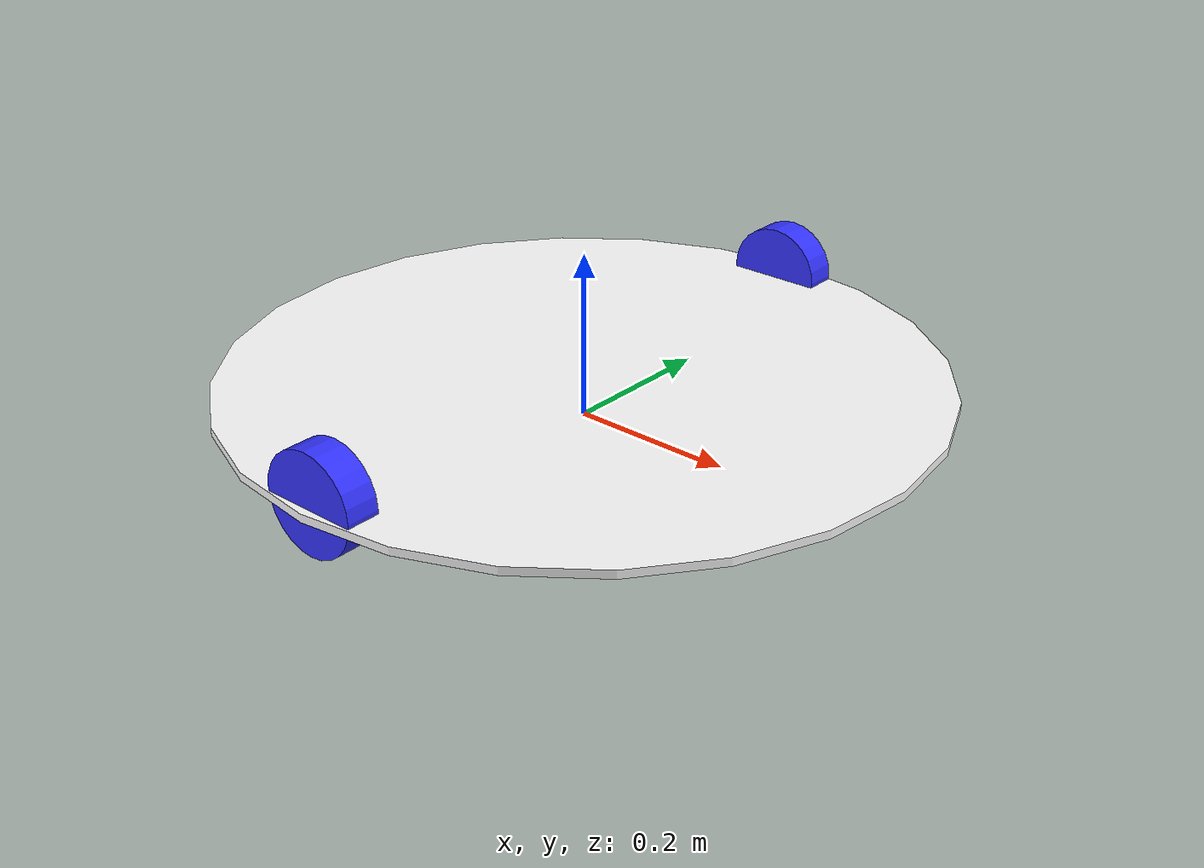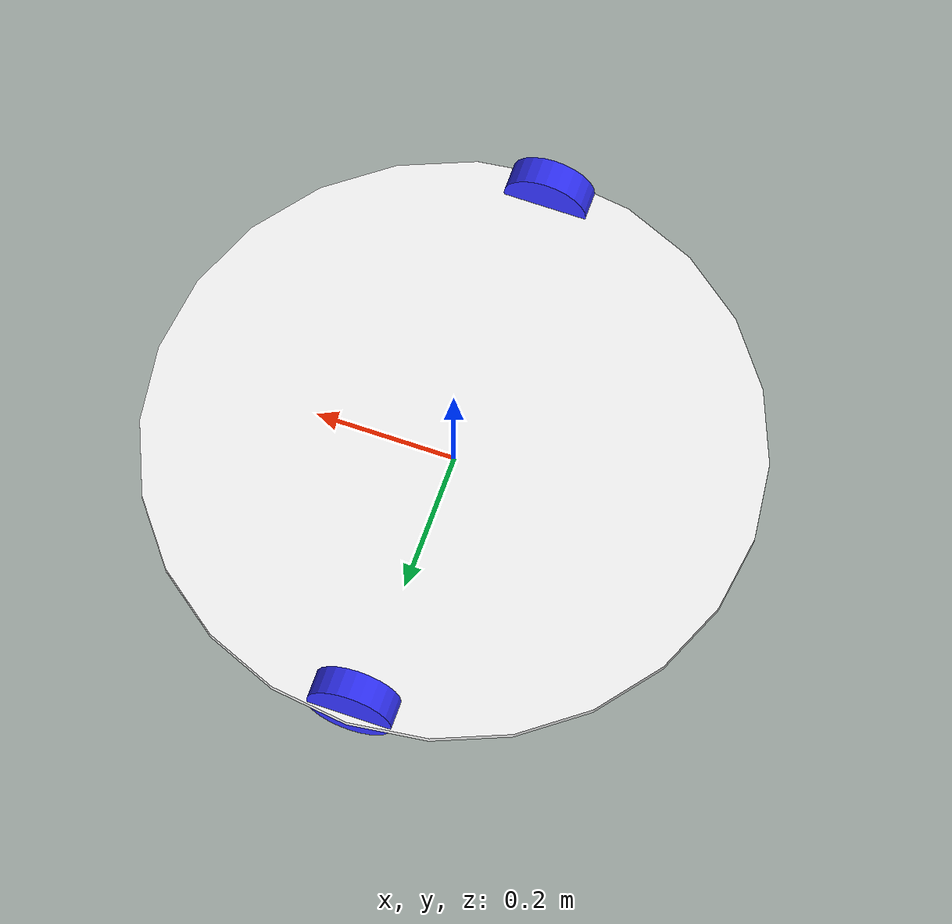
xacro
<?xml version="1.0"?>
<robot xmlns:xacro="http://www.ros.org/wiki/xacro" >

    <xacro:include filename="inertial_macros.xacro"/>

    <material name="white">
        <color rgba="1 1 1 1" />
    </material>

    <material name="orange">
        <color rgba="1 0.3 0.1 1"/>
    </material>

    <material name="blue">
        <color rgba="0.2 0.2 1 1"/>
    </material>

    <material name="black">
        <color rgba="0 0 0 1"/>
    </material>

    <material name="red">
        <color rgba="1 0 0 1"/>
    </material>

    <!-- BASE LINK -->

    <link name="base_link">

    </link>

    <!-- BASE_FOOTPRINT LINK -->
    <joint name="base_footprint_joint" type="fixed">
        <parent link="base_link"/>
        <child link="base_footprint"/>
        <origin xyz="0 0 0" rpy="0 0 0"/>
    </joint>

    <link name="base_footprint">
    </link>

    <!-- CHASSIS LINK -->

    <joint name="chassis_joint" type="fixed">
        <parent link="base_link"/>
        <child link="chassis"/>
        <origin xyz="0 0 0.05"/>
    </joint>

    <link name="chassis">
        <visual>
            <origin xyz="0 0 0"/>
            <geometry>
                <cylinder radius="0.43" length="0.01"/>
            </geometry>
            <material name="white"/>
        </visual>
        <collision>
            <origin xyz="0 0 0.05"/>
            <geometry>
                <cylinder radius="0.43" length="0.01"/>
            </geometry>
        </collision>
        <xacro:inertial_cylinder mass="1" length="0.01" radius="0.43">
            <origin xyz="0 0 0" rpy="0 0 0"/>
        </xacro:inertial_cylinder>
    </link>

    <gazebo reference="chassis">
        <material>Gazebo/White</material>
    </gazebo>

    <!-- LEFT WHEEL LINK -->

    <joint name="left_wheel_joint" type="continuous">
        <parent link="base_link"/>
        <child link="left_wheel"/>
        <origin xyz="0 0.4 0.06" rpy="-${pi/2} 0 0" />
        <axis xyz="0 0 1"/>
    </joint>

    <link name="left_wheel">
        <visual>
            <geometry>
                <cylinder radius="0.06" length="0.04"/>
            </geometry>
            <material name="blue"/>
        </visual>
        <collision>
            <geometry>
                <sphere radius="0.06" />
            </geometry>
        </collision>
        <xacro:inertial_cylinder mass="0.2" length="0.04" radius="0.06">
            <origin xyz="0 0 0" rpy="0 0 0"/>
        </xacro:inertial_cylinder>
    </link>

    <gazebo reference="left_wheel">
        <material>Gazebo/Blue</material>
    </gazebo>

    <!-- RIGHT WHEEL LINK -->

    <joint name="right_wheel_joint" type="continuous">
        <parent link="base_link"/>
        <child link="right_wheel"/>
        <origin xyz="0 -0.4 0.06" rpy="${pi/2} 0 0" />
        <axis xyz="0 0 -1"/>
    </joint>

    <link name="right_wheel">
        <visual>
            <geometry>
                <cylinder radius="0.06" length="0.04"/>
            </geometry>
            <material name="blue"/>
        </visual>
        <collision>
            <geometry>
                <sphere radius="0.06"/>
            </geometry>
        </collision>
        <xacro:inertial_cylinder mass="0.2" length="0.04" radius="0.06">
            <origin xyz="0 0 0" rpy="0 0 0"/>
        </xacro:inertial_cylinder>
    </link>

    <gazebo reference="right_wheel">
        <material>Gazebo/Blue</material>
    </gazebo>

    <!-- CASTER WHEEL FRONT LINK -->

    <joint name="caster_wheel_joint_F" type="fixed">
        <parent link="chassis"/>
        <child link="caster_wheel_F"/>
        <origin xyz="0.35 0 -0.025"/>
    </joint>

    <link name="caster_wheel_F">
        <visual>
            <geometry>
                <sphere radius="0.025"/>
            </geometry>
            <material name="black"/>
        </visual>
        <collision>
            <geometry>
                <sphere radius="0.025"/>
            </geometry>
        </collision>
        <xacro:inertial_sphere mass="0.1" radius="0.025">
            <origin xyz="0 0 0" rpy="0 0 0"/>
        </xacro:inertial_sphere>
    </link>

    <gazebo reference="caster_wheel_F">
        <material>Gazebo/Black</material>
        <mu1 value="0.001"/>
        <mu2 value="0.001"/>
    </gazebo>

        <!-- CASTER WHEEL REAR LINK -->

    <joint name="caster_wheel_joint_R" type="fixed">
        <parent link="chassis"/>
        <child link="caster_wheel_R"/>
        <origin xyz="-0.35 0 -0.025"/>
    </joint>

    <link name="caster_wheel_R">
        <visual>
            <geometry>
                <sphere radius="0.025"/>
            </geometry>
            <material name="black"/>
        </visual>
        <collision>
            <geometry>
                <sphere radius="0.025"/>
            </geometry>
        </collision>
        <xacro:inertial_sphere mass="0.1" radius="0.025">
            <origin xyz="0 0 0" rpy="0 0 0"/>
        </xacro:inertial_sphere>
    </link>

    <gazebo reference="caster_wheel_R">
        <material>Gazebo/Black</material>
        <mu1 value="0.001"/>
        <mu2 value="0.001"/>
    </gazebo>

</robot>
